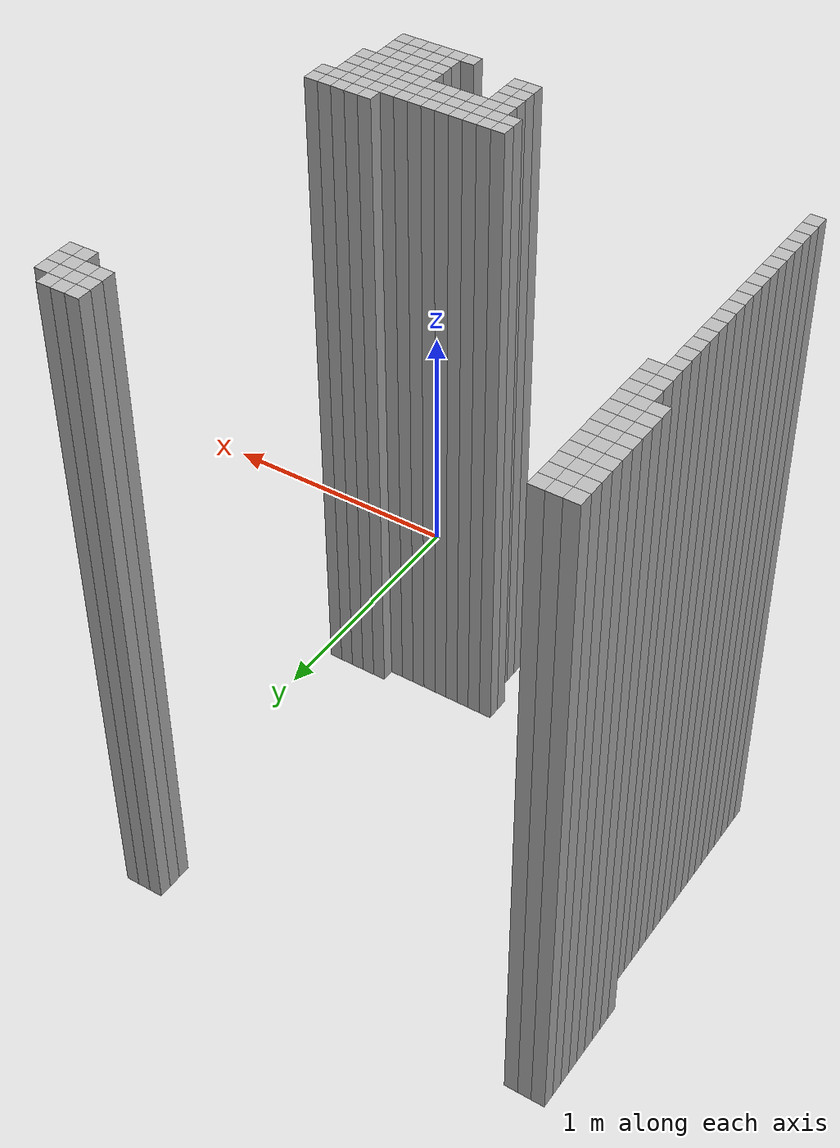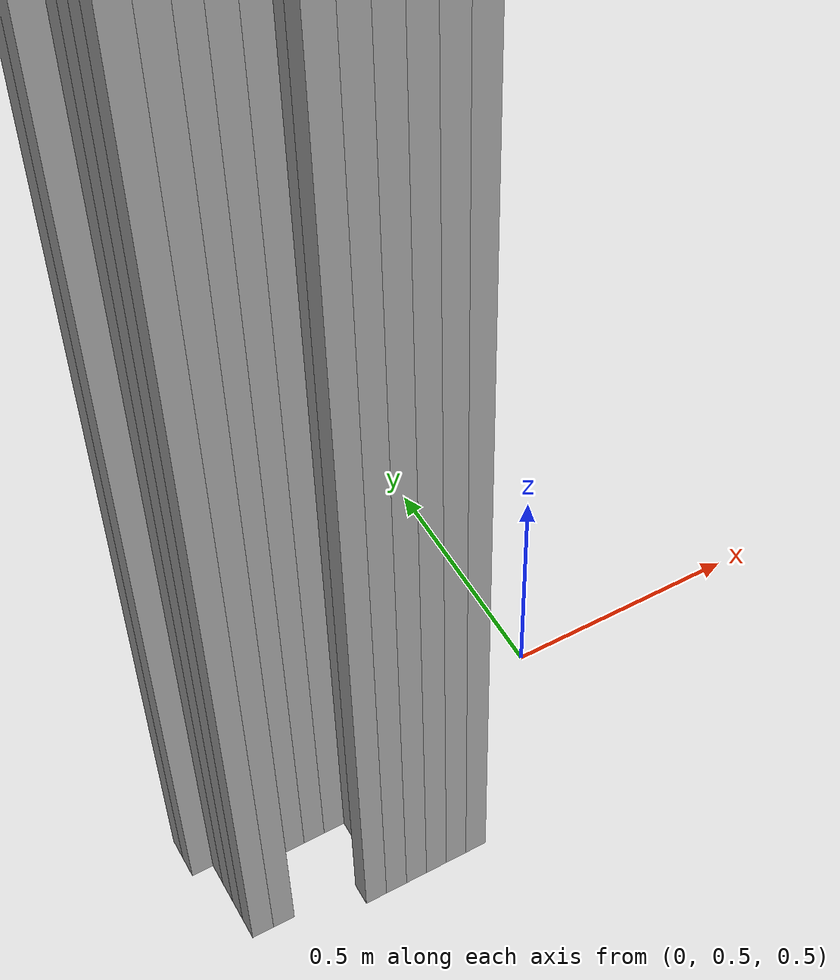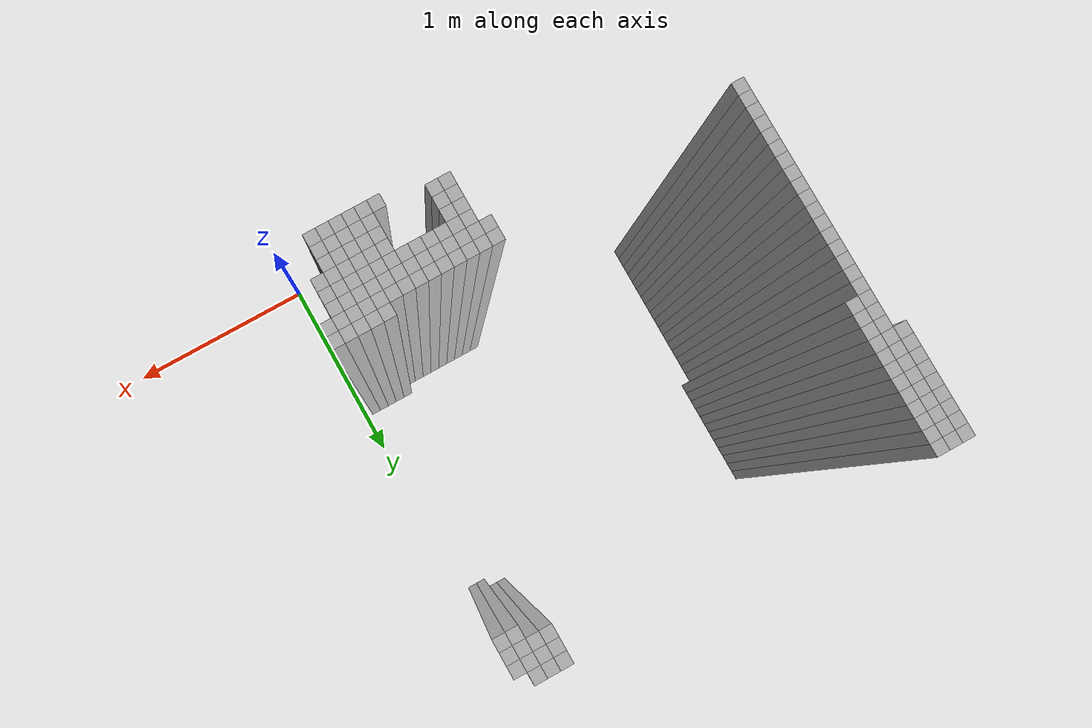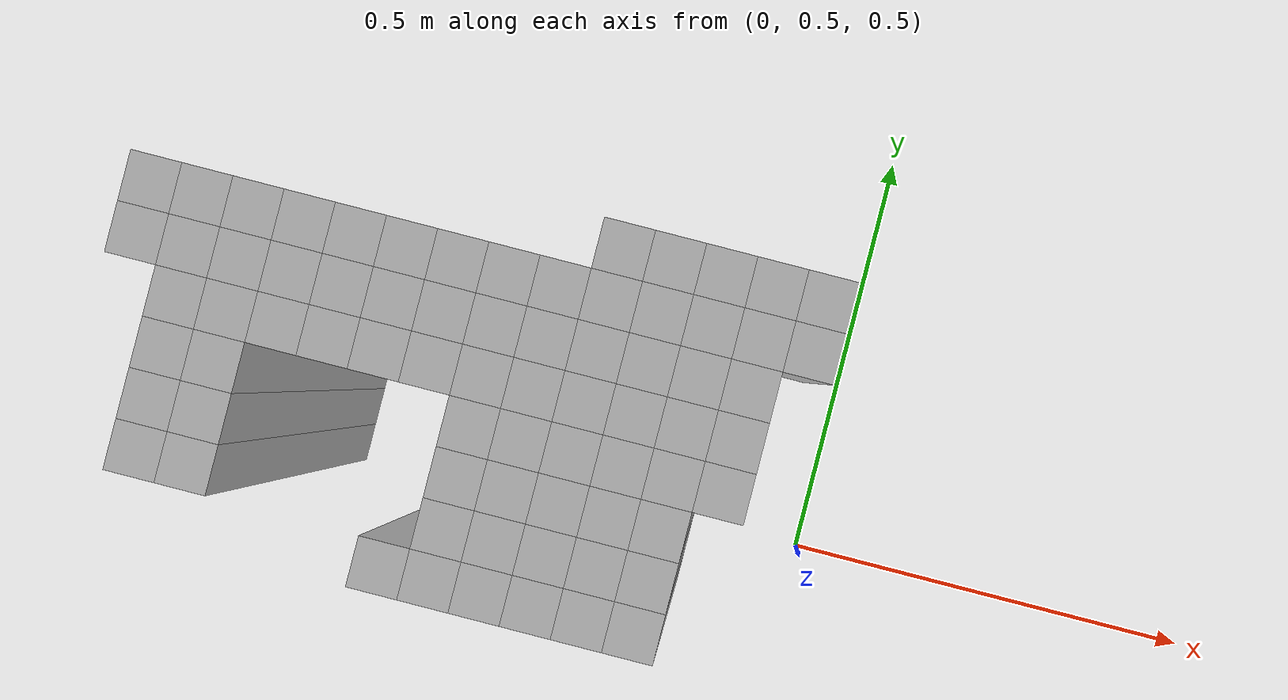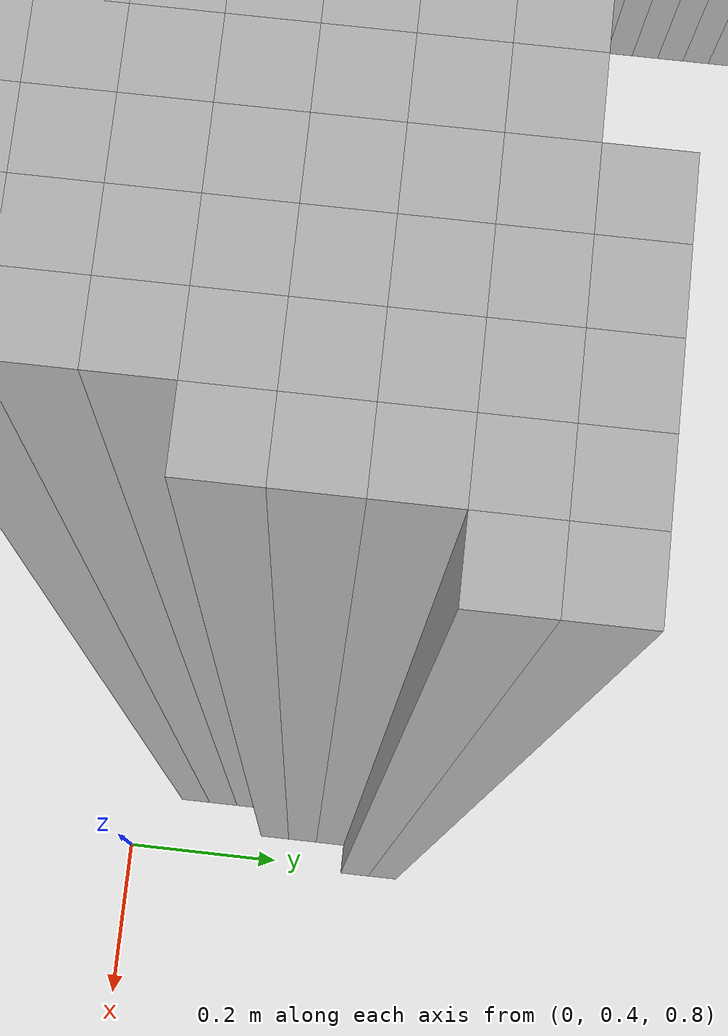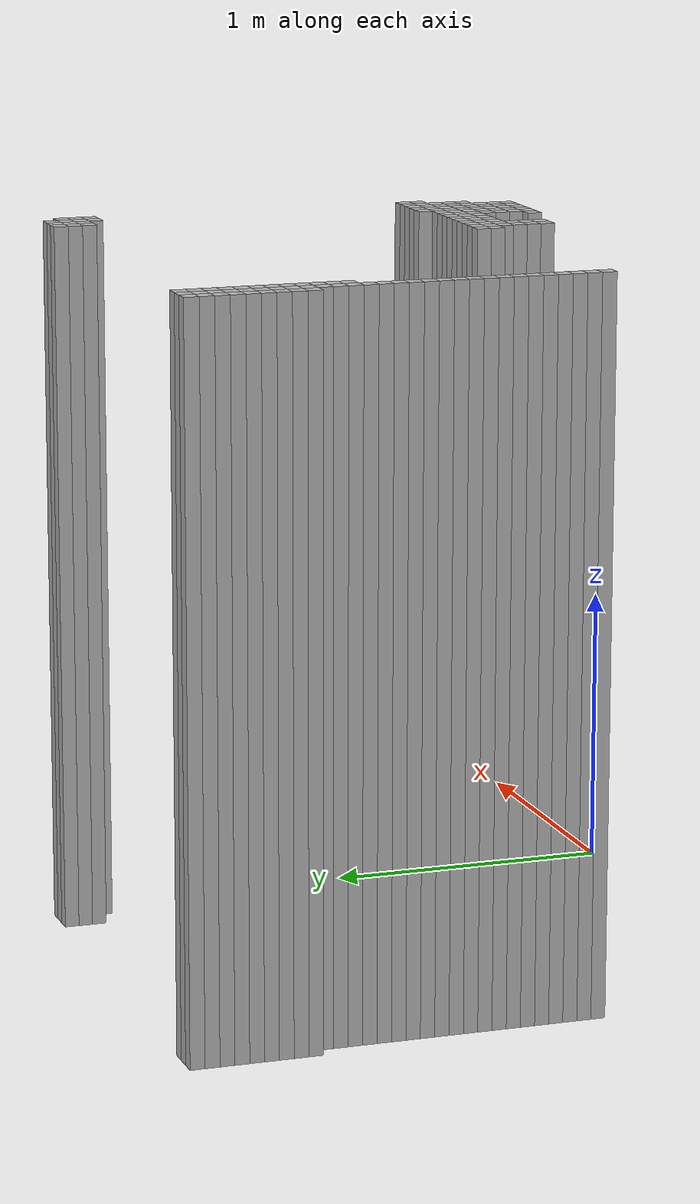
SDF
<sdf version="1.9">
 <world name="map_world">
  <model name="wall_188_112">
   <static>true</static>
   <pose>-1.761 2.080 1.250 0 0 0</pose>
   <link name="link">
    <collision name="collision"><geometry><box><size>0.050 0.050 2.500</size></box></geometry></collision>
    <visual name="visual"><geometry><box><size>0.050 0.050 2.500</size></box></geometry></visual>
   </link>
  </model>
  <model name="wall_189_112">
   <static>true</static>
   <pose>-1.711 2.080 1.250 0 0 0</pose>
   <link name="link">
    <collision name="collision"><geometry><box><size>0.050 0.050 2.500</size></box></geometry></collision>
    <visual name="visual"><geometry><box><size>0.050 0.050 2.500</size></box></geometry></visual>
   </link>
  </model>
  <model name="wall_190_112">
   <static>true</static>
   <pose>-1.661 2.080 1.250 0 0 0</pose>
   <link name="link">
    <collision name="collision"><geometry><box><size>0.050 0.050 2.500</size></box></geometry></collision>
    <visual name="visual"><geometry><box><size>0.050 0.050 2.500</size></box></geometry></visual>
   </link>
  </model>
  <model name="wall_219_112">
   <static>true</static>
   <pose>-0.211 2.080 1.250 0 0 0</pose>
   <link name="link">
    <collision name="collision"><geometry><box><size>0.050 0.050 2.500</size></box></geometry></collision>
    <visual name="visual"><geometry><box><size>0.050 0.050 2.500</size></box></geometry></visual>
   </link>
  </model>
  <model name="wall_220_112">
   <static>true</static>
   <pose>-0.161 2.080 1.250 0 0 0</pose>
   <link name="link">
    <collision name="collision"><geometry><box><size>0.050 0.050 2.500</size></box></geometry></collision>
    <visual name="visual"><geometry><box><size>0.050 0.050 2.500</size></box></geometry></visual>
   </link>
  </model>
  <model name="wall_221_112">
   <static>true</static>
   <pose>-0.111 2.080 1.250 0 0 0</pose>
   <link name="link">
    <collision name="collision"><geometry><box><size>0.050 0.050 2.500</size></box></geometry></collision>
    <visual name="visual"><geometry><box><size>0.050 0.050 2.500</size></box></geometry></visual>
   </link>
  </model>
  <model name="wall_188_113">
   <static>true</static>
   <pose>-1.761 2.030 1.250 0 0 0</pose>
   <link name="link">
    <collision name="collision"><geometry><box><size>0.050 0.050 2.500</size></box></geometry></collision>
    <visual name="visual"><geometry><box><size>0.050 0.050 2.500</size></box></geometry></visual>
   </link>
  </model>
  <model name="wall_189_113">
   <static>true</static>
   <pose>-1.711 2.030 1.250 0 0 0</pose>
   <link name="link">
    <collision name="collision"><geometry><box><size>0.050 0.050 2.500</size></box></geometry></collision>
    <visual name="visual"><geometry><box><size>0.050 0.050 2.500</size></box></geometry></visual>
   </link>
  </model>
  <model name="wall_190_113">
   <static>true</static>
   <pose>-1.661 2.030 1.250 0 0 0</pose>
   <link name="link">
    <collision name="collision"><geometry><box><size>0.050 0.050 2.500</size></box></geometry></collision>
    <visual name="visual"><geometry><box><size>0.050 0.050 2.500</size></box></geometry></visual>
   </link>
  </model>
  <model name="wall_219_113">
   <static>true</static>
   <pose>-0.211 2.030 1.250 0 0 0</pose>
   <link name="link">
    <collision name="collision"><geometry><box><size>0.050 0.050 2.500</size></box></geometry></collision>
    <visual name="visual"><geometry><box><size>0.050 0.050 2.500</size></box></geometry></visual>
   </link>
  </model>
  <model name="wall_220_113">
   <static>true</static>
   <pose>-0.161 2.030 1.250 0 0 0</pose>
   <link name="link">
    <collision name="collision"><geometry><box><size>0.050 0.050 2.500</size></box></geometry></collision>
    <visual name="visual"><geometry><box><size>0.050 0.050 2.500</size></box></geometry></visual>
   </link>
  </model>
  <model name="wall_221_113">
   <static>true</static>
   <pose>-0.111 2.030 1.250 0 0 0</pose>
   <link name="link">
    <collision name="collision"><geometry><box><size>0.050 0.050 2.500</size></box></geometry></collision>
    <visual name="visual"><geometry><box><size>0.050 0.050 2.500</size></box></geometry></visual>
   </link>
  </model>
  <model name="wall_222_113">
   <static>true</static>
   <pose>-0.061 2.030 1.250 0 0 0</pose>
   <link name="link">
    <collision name="collision"><geometry><box><size>0.050 0.050 2.500</size></box></geometry></collision>
    <visual name="visual"><geometry><box><size>0.050 0.050 2.500</size></box></geometry></visual>
   </link>
  </model>
  <model name="wall_188_114">
   <static>true</static>
   <pose>-1.761 1.980 1.250 0 0 0</pose>
   <link name="link">
    <collision name="collision"><geometry><box><size>0.050 0.050 2.500</size></box></geometry></collision>
    <visual name="visual"><geometry><box><size>0.050 0.050 2.500</size></box></geometry></visual>
   </link>
  </model>
  <model name="wall_189_114">
   <static>true</static>
   <pose>-1.711 1.980 1.250 0 0 0</pose>
   <link name="link">
    <collision name="collision"><geometry><box><size>0.050 0.050 2.500</size></box></geometry></collision>
    <visual name="visual"><geometry><box><size>0.050 0.050 2.500</size></box></geometry></visual>
   </link>
  </model>
  <model name="wall_190_114">
   <static>true</static>
   <pose>-1.661 1.980 1.250 0 0 0</pose>
   <link name="link">
    <collision name="collision"><geometry><box><size>0.050 0.050 2.500</size></box></geometry></collision>
    <visual name="visual"><geometry><box><size>0.050 0.050 2.500</size></box></geometry></visual>
   </link>
  </model>
  <model name="wall_219_114">
   <static>true</static>
   <pose>-0.211 1.980 1.250 0 0 0</pose>
   <link name="link">
    <collision name="collision"><geometry><box><size>0.050 0.050 2.500</size></box></geometry></collision>
    <visual name="visual"><geometry><box><size>0.050 0.050 2.500</size></box></geometry></visual>
   </link>
  </model>
  <model name="wall_220_114">
   <static>true</static>
   <pose>-0.161 1.980 1.250 0 0 0</pose>
   <link name="link">
    <collision name="collision"><geometry><box><size>0.050 0.050 2.500</size></box></geometry></collision>
    <visual name="visual"><geometry><box><size>0.050 0.050 2.500</size></box></geometry></visual>
   </link>
  </model>
  <model name="wall_221_114">
   <static>true</static>
   <pose>-0.111 1.980 1.250 0 0 0</pose>
   <link name="link">
    <collision name="collision"><geometry><box><size>0.050 0.050 2.500</size></box></geometry></collision>
    <visual name="visual"><geometry><box><size>0.050 0.050 2.500</size></box></geometry></visual>
   </link>
  </model>
  <model name="wall_222_114">
   <static>true</static>
   <pose>-0.061 1.980 1.250 0 0 0</pose>
   <link name="link">
    <collision name="collision"><geometry><box><size>0.050 0.050 2.500</size></box></geometry></collision>
    <visual name="visual"><geometry><box><size>0.050 0.050 2.500</size></box></geometry></visual>
   </link>
  </model>
  <model name="wall_188_115">
   <static>true</static>
   <pose>-1.761 1.930 1.250 0 0 0</pose>
   <link name="link">
    <collision name="collision"><geometry><box><size>0.050 0.050 2.500</size></box></geometry></collision>
    <visual name="visual"><geometry><box><size>0.050 0.050 2.500</size></box></geometry></visual>
   </link>
  </model>
  <model name="wall_189_115">
   <static>true</static>
   <pose>-1.711 1.930 1.250 0 0 0</pose>
   <link name="link">
    <collision name="collision"><geometry><box><size>0.050 0.050 2.500</size></box></geometry></collision>
    <visual name="visual"><geometry><box><size>0.050 0.050 2.500</size></box></geometry></visual>
   </link>
  </model>
  <model name="wall_190_115">
   <static>true</static>
   <pose>-1.661 1.930 1.250 0 0 0</pose>
   <link name="link">
    <collision name="collision"><geometry><box><size>0.050 0.050 2.500</size></box></geometry></collision>
    <visual name="visual"><geometry><box><size>0.050 0.050 2.500</size></box></geometry></visual>
   </link>
  </model>
  <model name="wall_221_115">
   <static>true</static>
   <pose>-0.111 1.930 1.250 0 0 0</pose>
   <link name="link">
    <collision name="collision"><geometry><box><size>0.050 0.050 2.500</size></box></geometry></collision>
    <visual name="visual"><geometry><box><size>0.050 0.050 2.500</size></box></geometry></visual>
   </link>
  </model>
  <model name="wall_222_115">
   <static>true</static>
   <pose>-0.061 1.930 1.250 0 0 0</pose>
   <link name="link">
    <collision name="collision"><geometry><box><size>0.050 0.050 2.500</size></box></geometry></collision>
    <visual name="visual"><geometry><box><size>0.050 0.050 2.500</size></box></geometry></visual>
   </link>
  </model>
  <model name="wall_188_116">
   <static>true</static>
   <pose>-1.761 1.880 1.250 0 0 0</pose>
   <link name="link">
    <collision name="collision"><geometry><box><size>0.050 0.050 2.500</size></box></geometry></collision>
    <visual name="visual"><geometry><box><size>0.050 0.050 2.500</size></box></geometry></visual>
   </link>
  </model>
  <model name="wall_189_116">
   <static>true</static>
   <pose>-1.711 1.880 1.250 0 0 0</pose>
   <link name="link">
    <collision name="collision"><geometry><box><size>0.050 0.050 2.500</size></box></geometry></collision>
    <visual name="visual"><geometry><box><size>0.050 0.050 2.500</size></box></geometry></visual>
   </link>
  </model>
  <model name="wall_190_116">
   <static>true</static>
   <pose>-1.661 1.880 1.250 0 0 0</pose>
   <link name="link">
    <collision name="collision"><geometry><box><size>0.050 0.050 2.500</size></box></geometry></collision>
    <visual name="visual"><geometry><box><size>0.050 0.050 2.500</size></box></geometry></visual>
   </link>
  </model>
  <model name="wall_188_117">
   <static>true</static>
   <pose>-1.761 1.830 1.250 0 0 0</pose>
   <link name="link">
    <collision name="collision"><geometry><box><size>0.050 0.050 2.500</size></box></geometry></collision>
    <visual name="visual"><geometry><box><size>0.050 0.050 2.500</size></box></geometry></visual>
   </link>
  </model>
  <model name="wall_189_117">
   <static>true</static>
   <pose>-1.711 1.830 1.250 0 0 0</pose>
   <link name="link">
    <collision name="collision"><geometry><box><size>0.050 0.050 2.500</size></box></geometry></collision>
    <visual name="visual"><geometry><box><size>0.050 0.050 2.500</size></box></geometry></visual>
   </link>
  </model>
  <model name="wall_190_117">
   <static>true</static>
   <pose>-1.661 1.830 1.250 0 0 0</pose>
   <link name="link">
    <collision name="collision"><geometry><box><size>0.050 0.050 2.500</size></box></geometry></collision>
    <visual name="visual"><geometry><box><size>0.050 0.050 2.500</size></box></geometry></visual>
   </link>
  </model>
  <model name="wall_188_118">
   <static>true</static>
   <pose>-1.761 1.780 1.250 0 0 0</pose>
   <link name="link">
    <collision name="collision"><geometry><box><size>0.050 0.050 2.500</size></box></geometry></collision>
    <visual name="visual"><geometry><box><size>0.050 0.050 2.500</size></box></geometry></visual>
   </link>
  </model>
  <model name="wall_189_118">
   <static>true</static>
   <pose>-1.711 1.780 1.250 0 0 0</pose>
   <link name="link">
    <collision name="collision"><geometry><box><size>0.050 0.050 2.500</size></box></geometry></collision>
    <visual name="visual"><geometry><box><size>0.050 0.050 2.500</size></box></geometry></visual>
   </link>
  </model>
  <model name="wall_190_118">
   <static>true</static>
   <pose>-1.661 1.780 1.250 0 0 0</pose>
   <link name="link">
    <collision name="collision"><geometry><box><size>0.050 0.050 2.500</size></box></geometry></collision>
    <visual name="visual"><geometry><box><size>0.050 0.050 2.500</size></box></geometry></visual>
   </link>
  </model>
  <model name="wall_188_119">
   <static>true</static>
   <pose>-1.761 1.730 1.250 0 0 0</pose>
   <link name="link">
    <collision name="collision"><geometry><box><size>0.050 0.050 2.500</size></box></geometry></collision>
    <visual name="visual"><geometry><box><size>0.050 0.050 2.500</size></box></geometry></visual>
   </link>
  </model>
  <model name="wall_189_119">
   <static>true</static>
   <pose>-1.711 1.730 1.250 0 0 0</pose>
   <link name="link">
    <collision name="collision"><geometry><box><size>0.050 0.050 2.500</size></box></geometry></collision>
    <visual name="visual"><geometry><box><size>0.050 0.050 2.500</size></box></geometry></visual>
   </link>
  </model>
  <model name="wall_190_119">
   <static>true</static>
   <pose>-1.661 1.730 1.250 0 0 0</pose>
   <link name="link">
    <collision name="collision"><geometry><box><size>0.050 0.050 2.500</size></box></geometry></collision>
    <visual name="visual"><geometry><box><size>0.050 0.050 2.500</size></box></geometry></visual>
   </link>
  </model>
  <model name="wall_188_120">
   <static>true</static>
   <pose>-1.761 1.680 1.250 0 0 0</pose>
   <link name="link">
    <collision name="collision"><geometry><box><size>0.050 0.050 2.500</size></box></geometry></collision>
    <visual name="visual"><geometry><box><size>0.050 0.050 2.500</size></box></geometry></visual>
   </link>
  </model>
  <model name="wall_189_120">
   <static>true</static>
   <pose>-1.711 1.680 1.250 0 0 0</pose>
   <link name="link">
    <collision name="collision"><geometry><box><size>0.050 0.050 2.500</size></box></geometry></collision>
    <visual name="visual"><geometry><box><size>0.050 0.050 2.500</size></box></geometry></visual>
   </link>
  </model>
  <model name="wall_190_120">
   <static>true</static>
   <pose>-1.661 1.680 1.250 0 0 0</pose>
   <link name="link">
    <collision name="collision"><geometry><box><size>0.050 0.050 2.500</size></box></geometry></collision>
    <visual name="visual"><geometry><box><size>0.050 0.050 2.500</size></box></geometry></visual>
   </link>
  </model>
  <model name="wall_189_121">
   <static>true</static>
   <pose>-1.711 1.630 1.250 0 0 0</pose>
   <link name="link">
    <collision name="collision"><geometry><box><size>0.050 0.050 2.500</size></box></geometry></collision>
    <visual name="visual"><geometry><box><size>0.050 0.050 2.500</size></box></geometry></visual>
   </link>
  </model>
  <model name="wall_190_121">
   <static>true</static>
   <pose>-1.661 1.630 1.250 0 0 0</pose>
   <link name="link">
    <collision name="collision"><geometry><box><size>0.050 0.050 2.500</size></box></geometry></collision>
    <visual name="visual"><geometry><box><size>0.050 0.050 2.500</size></box></geometry></visual>
   </link>
  </model>
  <model name="wall_189_122">
   <static>true</static>
   <pose>-1.711 1.580 1.250 0 0 0</pose>
   <link name="link">
    <collision name="collision"><geometry><box><size>0.050 0.050 2.500</size></box></geometry></collision>
    <visual name="visual"><geometry><box><size>0.050 0.050 2.500</size></box></geometry></visual>
   </link>
  </model>
  <model name="wall_190_122">
   <static>true</static>
   <pose>-1.661 1.580 1.250 0 0 0</pose>
   <link name="link">
    <collision name="collision"><geometry><box><size>0.050 0.050 2.500</size></box></geometry></collision>
    <visual name="visual"><geometry><box><size>0.050 0.050 2.500</size></box></geometry></visual>
   </link>
  </model>
  <model name="wall_189_123">
   <static>true</static>
   <pose>-1.711 1.530 1.250 0 0 0</pose>
   <link name="link">
    <collision name="collision"><geometry><box><size>0.050 0.050 2.500</size></box></geometry></collision>
    <visual name="visual"><geometry><box><size>0.050 0.050 2.500</size></box></geometry></visual>
   </link>
  </model>
  <model name="wall_190_123">
   <static>true</static>
   <pose>-1.661 1.530 1.250 0 0 0</pose>
   <link name="link">
    <collision name="collision"><geometry><box><size>0.050 0.050 2.500</size></box></geometry></collision>
    <visual name="visual"><geometry><box><size>0.050 0.050 2.500</size></box></geometry></visual>
   </link>
  </model>
  <model name="wall_189_124">
   <static>true</static>
   <pose>-1.711 1.480 1.250 0 0 0</pose>
   <link name="link">
    <collision name="collision"><geometry><box><size>0.050 0.050 2.500</size></box></geometry></collision>
    <visual name="visual"><geometry><box><size>0.050 0.050 2.500</size></box></geometry></visual>
   </link>
  </model>
  <model name="wall_189_125">
   <static>true</static>
   <pose>-1.711 1.430 1.250 0 0 0</pose>
   <link name="link">
    <collision name="collision"><geometry><box><size>0.050 0.050 2.500</size></box></geometry></collision>
    <visual name="visual"><geometry><box><size>0.050 0.050 2.500</size></box></geometry></visual>
   </link>
  </model>
  <model name="wall_189_126">
   <static>true</static>
   <pose>-1.711 1.380 1.250 0 0 0</pose>
   <link name="link">
    <collision name="collision"><geometry><box><size>0.050 0.050 2.500</size></box></geometry></collision>
    <visual name="visual"><geometry><box><size>0.050 0.050 2.500</size></box></geometry></visual>
   </link>
  </model>
  <model name="wall_189_127">
   <static>true</static>
   <pose>-1.711 1.330 1.250 0 0 0</pose>
   <link name="link">
    <collision name="collision"><geometry><box><size>0.050 0.050 2.500</size></box></geometry></collision>
    <visual name="visual"><geometry><box><size>0.050 0.050 2.500</size></box></geometry></visual>
   </link>
  </model>
  <model name="wall_189_128">
   <static>true</static>
   <pose>-1.711 1.280 1.250 0 0 0</pose>
   <link name="link">
    <collision name="collision"><geometry><box><size>0.050 0.050 2.500</size></box></geometry></collision>
    <visual name="visual"><geometry><box><size>0.050 0.050 2.500</size></box></geometry></visual>
   </link>
  </model>
  <model name="wall_189_129">
   <static>true</static>
   <pose>-1.711 1.230 1.250 0 0 0</pose>
   <link name="link">
    <collision name="collision"><geometry><box><size>0.050 0.050 2.500</size></box></geometry></collision>
    <visual name="visual"><geometry><box><size>0.050 0.050 2.500</size></box></geometry></visual>
   </link>
  </model>
  <model name="wall_189_130">
   <static>true</static>
   <pose>-1.711 1.180 1.250 0 0 0</pose>
   <link name="link">
    <collision name="collision"><geometry><box><size>0.050 0.050 2.500</size></box></geometry></collision>
    <visual name="visual"><geometry><box><size>0.050 0.050 2.500</size></box></geometry></visual>
   </link>
  </model>
  <model name="wall_189_131">
   <static>true</static>
   <pose>-1.711 1.130 1.250 0 0 0</pose>
   <link name="link">
    <collision name="collision"><geometry><box><size>0.050 0.050 2.500</size></box></geometry></collision>
    <visual name="visual"><geometry><box><size>0.050 0.050 2.500</size></box></geometry></visual>
   </link>
  </model>
  <model name="wall_189_132">
   <static>true</static>
   <pose>-1.711 1.080 1.250 0 0 0</pose>
   <link name="link">
    <collision name="collision"><geometry><box><size>0.050 0.050 2.500</size></box></geometry></collision>
    <visual name="visual"><geometry><box><size>0.050 0.050 2.500</size></box></geometry></visual>
   </link>
  </model>
  <model name="wall_189_133">
   <static>true</static>
   <pose>-1.711 1.030 1.250 0 0 0</pose>
   <link name="link">
    <collision name="collision"><geometry><box><size>0.050 0.050 2.500</size></box></geometry></collision>
    <visual name="visual"><geometry><box><size>0.050 0.050 2.500</size></box></geometry></visual>
   </link>
  </model>
  <model name="wall_189_134">
   <static>true</static>
   <pose>-1.711 0.980 1.250 0 0 0</pose>
   <link name="link">
    <collision name="collision"><geometry><box><size>0.050 0.050 2.500</size></box></geometry></collision>
    <visual name="visual"><geometry><box><size>0.050 0.050 2.500</size></box></geometry></visual>
   </link>
  </model>
  <model name="wall_189_135">
   <static>true</static>
   <pose>-1.711 0.930 1.250 0 0 0</pose>
   <link name="link">
    <collision name="collision"><geometry><box><size>0.050 0.050 2.500</size></box></geometry></collision>
    <visual name="visual"><geometry><box><size>0.050 0.050 2.500</size></box></geometry></visual>
   </link>
  </model>
  <model name="wall_189_136">
   <static>true</static>
   <pose>-1.711 0.880 1.250 0 0 0</pose>
   <link name="link">
    <collision name="collision"><geometry><box><size>0.050 0.050 2.500</size></box></geometry></collision>
    <visual name="visual"><geometry><box><size>0.050 0.050 2.500</size></box></geometry></visual>
   </link>
  </model>
  <model name="wall_189_137">
   <static>true</static>
   <pose>-1.711 0.830 1.250 0 0 0</pose>
   <link name="link">
    <collision name="collision"><geometry><box><size>0.050 0.050 2.500</size></box></geometry></collision>
    <visual name="visual"><geometry><box><size>0.050 0.050 2.500</size></box></geometry></visual>
   </link>
  </model>
  <model name="wall_189_138">
   <static>true</static>
   <pose>-1.711 0.780 1.250 0 0 0</pose>
   <link name="link">
    <collision name="collision"><geometry><box><size>0.050 0.050 2.500</size></box></geometry></collision>
    <visual name="visual"><geometry><box><size>0.050 0.050 2.500</size></box></geometry></visual>
   </link>
  </model>
  <model name="wall_218_138">
   <static>true</static>
   <pose>-0.261 0.780 1.250 0 0 0</pose>
   <link name="link">
    <collision name="collision"><geometry><box><size>0.050 0.050 2.500</size></box></geometry></collision>
    <visual name="visual"><geometry><box><size>0.050 0.050 2.500</size></box></geometry></visual>
   </link>
  </model>
  <model name="wall_219_138">
   <static>true</static>
   <pose>-0.211 0.780 1.250 0 0 0</pose>
   <link name="link">
    <collision name="collision"><geometry><box><size>0.050 0.050 2.500</size></box></geometry></collision>
    <visual name="visual"><geometry><box><size>0.050 0.050 2.500</size></box></geometry></visual>
   </link>
  </model>
  <model name="wall_220_138">
   <static>true</static>
   <pose>-0.161 0.780 1.250 0 0 0</pose>
   <link name="link">
    <collision name="collision"><geometry><box><size>0.050 0.050 2.500</size></box></geometry></collision>
    <visual name="visual"><geometry><box><size>0.050 0.050 2.500</size></box></geometry></visual>
   </link>
  </model>
  <model name="wall_221_138">
   <static>true</static>
   <pose>-0.111 0.780 1.250 0 0 0</pose>
   <link name="link">
    <collision name="collision"><geometry><box><size>0.050 0.050 2.500</size></box></geometry></collision>
    <visual name="visual"><geometry><box><size>0.050 0.050 2.500</size></box></geometry></visual>
   </link>
  </model>
  <model name="wall_222_138">
   <static>true</static>
   <pose>-0.061 0.780 1.250 0 0 0</pose>
   <link name="link">
    <collision name="collision"><geometry><box><size>0.050 0.050 2.500</size></box></geometry></collision>
    <visual name="visual"><geometry><box><size>0.050 0.050 2.500</size></box></geometry></visual>
   </link>
  </model>
  <model name="wall_189_139">
   <static>true</static>
   <pose>-1.711 0.730 1.250 0 0 0</pose>
   <link name="link">
    <collision name="collision"><geometry><box><size>0.050 0.050 2.500</size></box></geometry></collision>
    <visual name="visual"><geometry><box><size>0.050 0.050 2.500</size></box></geometry></visual>
   </link>
  </model>
  <model name="wall_209_139">
   <static>true</static>
   <pose>-0.711 0.730 1.250 0 0 0</pose>
   <link name="link">
    <collision name="collision"><geometry><box><size>0.050 0.050 2.500</size></box></geometry></collision>
    <visual name="visual"><geometry><box><size>0.050 0.050 2.500</size></box></geometry></visual>
   </link>
  </model>
  <model name="wall_210_139">
   <static>true</static>
   <pose>-0.661 0.730 1.250 0 0 0</pose>
   <link name="link">
    <collision name="collision"><geometry><box><size>0.050 0.050 2.500</size></box></geometry></collision>
    <visual name="visual"><geometry><box><size>0.050 0.050 2.500</size></box></geometry></visual>
   </link>
  </model>
  <model name="wall_211_139">
   <static>true</static>
   <pose>-0.611 0.730 1.250 0 0 0</pose>
   <link name="link">
    <collision name="collision"><geometry><box><size>0.050 0.050 2.500</size></box></geometry></collision>
    <visual name="visual"><geometry><box><size>0.050 0.050 2.500</size></box></geometry></visual>
   </link>
  </model>
  <model name="wall_212_139">
   <static>true</static>
   <pose>-0.561 0.730 1.250 0 0 0</pose>
   <link name="link">
    <collision name="collision"><geometry><box><size>0.050 0.050 2.500</size></box></geometry></collision>
    <visual name="visual"><geometry><box><size>0.050 0.050 2.500</size></box></geometry></visual>
   </link>
  </model>
  <model name="wall_213_139">
   <static>true</static>
   <pose>-0.511 0.730 1.250 0 0 0</pose>
   <link name="link">
    <collision name="collision"><geometry><box><size>0.050 0.050 2.500</size></box></geometry></collision>
    <visual name="visual"><geometry><box><size>0.050 0.050 2.500</size></box></geometry></visual>
   </link>
  </model>
  <model name="wall_214_139">
   <static>true</static>
   <pose>-0.461 0.730 1.250 0 0 0</pose>
   <link name="link">
    <collision name="collision"><geometry><box><size>0.050 0.050 2.500</size></box></geometry></collision>
    <visual name="visual"><geometry><box><size>0.050 0.050 2.500</size></box></geometry></visual>
   </link>
  </model>
  <model name="wall_215_139">
   <static>true</static>
   <pose>-0.411 0.730 1.250 0 0 0</pose>
   <link name="link">
    <collision name="collision"><geometry><box><size>0.050 0.050 2.500</size></box></geometry></collision>
    <visual name="visual"><geometry><box><size>0.050 0.050 2.500</size></box></geometry></visual>
   </link>
  </model>
  <model name="wall_216_139">
   <static>true</static>
   <pose>-0.361 0.730 1.250 0 0 0</pose>
   <link name="link">
    <collision name="collision"><geometry><box><size>0.050 0.050 2.500</size></box></geometry></collision>
    <visual name="visual"><geometry><box><size>0.050 0.050 2.500</size></box></geometry></visual>
   </link>
  </model>
  <model name="wall_217_139">
   <static>true</static>
   <pose>-0.311 0.730 1.250 0 0 0</pose>
   <link name="link">
    <collision name="collision"><geometry><box><size>0.050 0.050 2.500</size></box></geometry></collision>
    <visual name="visual"><geometry><box><size>0.050 0.050 2.500</size></box></geometry></visual>
   </link>
  </model>
  <model name="wall_218_139">
   <static>true</static>
   <pose>-0.261 0.730 1.250 0 0 0</pose>
   <link name="link">
    <collision name="collision"><geometry><box><size>0.050 0.050 2.500</size></box></geometry></collision>
    <visual name="visual"><geometry><box><size>0.050 0.050 2.500</size></box></geometry></visual>
   </link>
  </model>
  <model name="wall_219_139">
   <static>true</static>
   <pose>-0.211 0.730 1.250 0 0 0</pose>
   <link name="link">
    <collision name="collision"><geometry><box><size>0.050 0.050 2.500</size></box></geometry></collision>
    <visual name="visual"><geometry><box><size>0.050 0.050 2.500</size></box></geometry></visual>
   </link>
  </model>
  <model name="wall_220_139">
   <static>true</static>
   <pose>-0.161 0.730 1.250 0 0 0</pose>
   <link name="link">
    <collision name="collision"><geometry><box><size>0.050 0.050 2.500</size></box></geometry></collision>
    <visual name="visual"><geometry><box><size>0.050 0.050 2.500</size></box></geometry></visual>
   </link>
  </model>
  <model name="wall_221_139">
   <static>true</static>
   <pose>-0.111 0.730 1.250 0 0 0</pose>
   <link name="link">
    <collision name="collision"><geometry><box><size>0.050 0.050 2.500</size></box></geometry></collision>
    <visual name="visual"><geometry><box><size>0.050 0.050 2.500</size></box></geometry></visual>
   </link>
  </model>
  <model name="wall_222_139">
   <static>true</static>
   <pose>-0.061 0.730 1.250 0 0 0</pose>
   <link name="link">
    <collision name="collision"><geometry><box><size>0.050 0.050 2.500</size></box></geometry></collision>
    <visual name="visual"><geometry><box><size>0.050 0.050 2.500</size></box></geometry></visual>
   </link>
  </model>
  <model name="wall_189_140">
   <static>true</static>
   <pose>-1.711 0.680 1.250 0 0 0</pose>
   <link name="link">
    <collision name="collision"><geometry><box><size>0.050 0.050 2.500</size></box></geometry></collision>
    <visual name="visual"><geometry><box><size>0.050 0.050 2.500</size></box></geometry></visual>
   </link>
  </model>
  <model name="wall_209_140">
   <static>true</static>
   <pose>-0.711 0.680 1.250 0 0 0</pose>
   <link name="link">
    <collision name="collision"><geometry><box><size>0.050 0.050 2.500</size></box></geometry></collision>
    <visual name="visual"><geometry><box><size>0.050 0.050 2.500</size></box></geometry></visual>
   </link>
  </model>
  <model name="wall_210_140">
   <static>true</static>
   <pose>-0.661 0.680 1.250 0 0 0</pose>
   <link name="link">
    <collision name="collision"><geometry><box><size>0.050 0.050 2.500</size></box></geometry></collision>
    <visual name="visual"><geometry><box><size>0.050 0.050 2.500</size></box></geometry></visual>
   </link>
  </model>
  <model name="wall_211_140">
   <static>true</static>
   <pose>-0.611 0.680 1.250 0 0 0</pose>
   <link name="link">
    <collision name="collision"><geometry><box><size>0.050 0.050 2.500</size></box></geometry></collision>
    <visual name="visual"><geometry><box><size>0.050 0.050 2.500</size></box></geometry></visual>
   </link>
  </model>
  <model name="wall_212_140">
   <static>true</static>
   <pose>-0.561 0.680 1.250 0 0 0</pose>
   <link name="link">
    <collision name="collision"><geometry><box><size>0.050 0.050 2.500</size></box></geometry></collision>
    <visual name="visual"><geometry><box><size>0.050 0.050 2.500</size></box></geometry></visual>
   </link>
  </model>
  <model name="wall_213_140">
   <static>true</static>
   <pose>-0.511 0.680 1.250 0 0 0</pose>
   <link name="link">
    <collision name="collision"><geometry><box><size>0.050 0.050 2.500</size></box></geometry></collision>
    <visual name="visual"><geometry><box><size>0.050 0.050 2.500</size></box></geometry></visual>
   </link>
  </model>
  <model name="wall_214_140">
   <static>true</static>
   <pose>-0.461 0.680 1.250 0 0 0</pose>
   <link name="link">
    <collision name="collision"><geometry><box><size>0.050 0.050 2.500</size></box></geometry></collision>
    <visual name="visual"><geometry><box><size>0.050 0.050 2.500</size></box></geometry></visual>
   </link>
  </model>
  <model name="wall_215_140">
   <static>true</static>
   <pose>-0.411 0.680 1.250 0 0 0</pose>
   <link name="link">
    <collision name="collision"><geometry><box><size>0.050 0.050 2.500</size></box></geometry></collision>
    <visual name="visual"><geometry><box><size>0.050 0.050 2.500</size></box></geometry></visual>
   </link>
  </model>
  <model name="wall_216_140">
   <static>true</static>
   <pose>-0.361 0.680 1.250 0 0 0</pose>
   <link name="link">
    <collision name="collision"><geometry><box><size>0.050 0.050 2.500</size></box></geometry></collision>
    <visual name="visual"><geometry><box><size>0.050 0.050 2.500</size></box></geometry></visual>
   </link>
  </model>
  <model name="wall_217_140">
   <static>true</static>
   <pose>-0.311 0.680 1.250 0 0 0</pose>
   <link name="link">
    <collision name="collision"><geometry><box><size>0.050 0.050 2.500</size></box></geometry></collision>
    <visual name="visual"><geometry><box><size>0.050 0.050 2.500</size></box></geometry></visual>
   </link>
  </model>
  <model name="wall_218_140">
   <static>true</static>
   <pose>-0.261 0.680 1.250 0 0 0</pose>
   <link name="link">
    <collision name="collision"><geometry><box><size>0.050 0.050 2.500</size></box></geometry></collision>
    <visual name="visual"><geometry><box><size>0.050 0.050 2.500</size></box></geometry></visual>
   </link>
  </model>
  <model name="wall_219_140">
   <static>true</static>
   <pose>-0.211 0.680 1.250 0 0 0</pose>
   <link name="link">
    <collision name="collision"><geometry><box><size>0.050 0.050 2.500</size></box></geometry></collision>
    <visual name="visual"><geometry><box><size>0.050 0.050 2.500</size></box></geometry></visual>
   </link>
  </model>
  <model name="wall_220_140">
   <static>true</static>
   <pose>-0.161 0.680 1.250 0 0 0</pose>
   <link name="link">
    <collision name="collision"><geometry><box><size>0.050 0.050 2.500</size></box></geometry></collision>
    <visual name="visual"><geometry><box><size>0.050 0.050 2.500</size></box></geometry></visual>
   </link>
  </model>
  <model name="wall_221_140">
   <static>true</static>
   <pose>-0.111 0.680 1.250 0 0 0</pose>
   <link name="link">
    <collision name="collision"><geometry><box><size>0.050 0.050 2.500</size></box></geometry></collision>
    <visual name="visual"><geometry><box><size>0.050 0.050 2.500</size></box></geometry></visual>
   </link>
  </model>
  <model name="wall_210_141">
   <static>true</static>
   <pose>-0.661 0.630 1.250 0 0 0</pose>
   <link name="link">
    <collision name="collision"><geometry><box><size>0.050 0.050 2.500</size></box></geometry></collision>
    <visual name="visual"><geometry><box><size>0.050 0.050 2.500</size></box></geometry></visual>
   </link>
  </model>
  <model name="wall_211_141">
   <static>true</static>
   <pose>-0.611 0.630 1.250 0 0 0</pose>
   <link name="link">
    <collision name="collision"><geometry><box><size>0.050 0.050 2.500</size></box></geometry></collision>
    <visual name="visual"><geometry><box><size>0.050 0.050 2.500</size></box></geometry></visual>
   </link>
  </model>
  <model name="wall_212_141">
   <static>true</static>
   <pose>-0.561 0.630 1.250 0 0 0</pose>
   <link name="link">
    <collision name="collision"><geometry><box><size>0.050 0.050 2.500</size></box></geometry></collision>
    <visual name="visual"><geometry><box><size>0.050 0.050 2.500</size></box></geometry></visual>
   </link>
  </model>
  <model name="wall_213_141">
   <static>true</static>
   <pose>-0.511 0.630 1.250 0 0 0</pose>
   <link name="link">
    <collision name="collision"><geometry><box><size>0.050 0.050 2.500</size></box></geometry></collision>
    <visual name="visual"><geometry><box><size>0.050 0.050 2.500</size></box></geometry></visual>
   </link>
  </model>
  <model name="wall_214_141">
   <static>true</static>
   <pose>-0.461 0.630 1.250 0 0 0</pose>
   <link name="link">
    <collision name="collision"><geometry><box><size>0.050 0.050 2.500</size></box></geometry></collision>
    <visual name="visual"><geometry><box><size>0.050 0.050 2.500</size></box></geometry></visual>
   </link>
  </model>
  <model name="wall_215_141">
   <static>true</static>
   <pose>-0.411 0.630 1.250 0 0 0</pose>
   <link name="link">
    <collision name="collision"><geometry><box><size>0.050 0.050 2.500</size></box></geometry></collision>
    <visual name="visual"><geometry><box><size>0.050 0.050 2.500</size></box></geometry></visual>
   </link>
  </model>
  <model name="wall_216_141">
   <static>true</static>
   <pose>-0.361 0.630 1.250 0 0 0</pose>
   <link name="link">
    <collision name="collision"><geometry><box><size>0.050 0.050 2.500</size></box></geometry></collision>
    <visual name="visual"><geometry><box><size>0.050 0.050 2.500</size></box></geometry></visual>
   </link>
  </model>
  <model name="wall_217_141">
   <static>true</static>
   <pose>-0.311 0.630 1.250 0 0 0</pose>
   <link name="link">
    <collision name="collision"><geometry><box><size>0.050 0.050 2.500</size></box></geometry></collision>
    <visual name="visual"><geometry><box><size>0.050 0.050 2.500</size></box></geometry></visual>
   </link>
  </model>
  <model name="wall_218_141">
   <static>true</static>
   <pose>-0.261 0.630 1.250 0 0 0</pose>
   <link name="link">
    <collision name="collision"><geometry><box><size>0.050 0.050 2.500</size></box></geometry></collision>
    <visual name="visual"><geometry><box><size>0.050 0.050 2.500</size></box></geometry></visual>
   </link>
  </model>
  <model name="wall_219_141">
   <static>true</static>
   <pose>-0.211 0.630 1.250 0 0 0</pose>
   <link name="link">
    <collision name="collision"><geometry><box><size>0.050 0.050 2.500</size></box></geometry></collision>
    <visual name="visual"><geometry><box><size>0.050 0.050 2.500</size></box></geometry></visual>
   </link>
  </model>
  <model name="wall_220_141">
   <static>true</static>
   <pose>-0.161 0.630 1.250 0 0 0</pose>
   <link name="link">
    <collision name="collision"><geometry><box><size>0.050 0.050 2.500</size></box></geometry></collision>
    <visual name="visual"><geometry><box><size>0.050 0.050 2.500</size></box></geometry></visual>
   </link>
  </model>
  <model name="wall_221_141">
   <static>true</static>
   <pose>-0.111 0.630 1.250 0 0 0</pose>
   <link name="link">
    <collision name="collision"><geometry><box><size>0.050 0.050 2.500</size></box></geometry></collision>
    <visual name="visual"><geometry><box><size>0.050 0.050 2.500</size></box></geometry></visual>
   </link>
  </model>
  <model name="wall_210_142">
   <static>true</static>
   <pose>-0.661 0.580 1.250 0 0 0</pose>
   <link name="link">
    <collision name="collision"><geometry><box><size>0.050 0.050 2.500</size></box></geometry></collision>
    <visual name="visual"><geometry><box><size>0.050 0.050 2.500</size></box></geometry></visual>
   </link>
  </model>
  <model name="wall_211_142">
   <static>true</static>
   <pose>-0.611 0.580 1.250 0 0 0</pose>
   <link name="link">
    <collision name="collision"><geometry><box><size>0.050 0.050 2.500</size></box></geometry></collision>
    <visual name="visual"><geometry><box><size>0.050 0.050 2.500</size></box></geometry></visual>
   </link>
  </model>
  <model name="wall_216_142">
   <static>true</static>
   <pose>-0.361 0.580 1.250 0 0 0</pose>
   <link name="link">
    <collision name="collision"><geometry><box><size>0.050 0.050 2.500</size></box></geometry></collision>
    <visual name="visual"><geometry><box><size>0.050 0.050 2.500</size></box></geometry></visual>
   </link>
  </model>
  <model name="wall_217_142">
   <static>true</static>
   <pose>-0.311 0.580 1.250 0 0 0</pose>
   <link name="link">
    <collision name="collision"><geometry><box><size>0.050 0.050 2.500</size></box></geometry></collision>
    <visual name="visual"><geometry><box><size>0.050 0.050 2.500</size></box></geometry></visual>
   </link>
  </model>
  <model name="wall_218_142">
   <static>true</static>
   <pose>-0.261 0.580 1.250 0 0 0</pose>
   <link name="link">
    <collision name="collision"><geometry><box><size>0.050 0.050 2.500</size></box></geometry></collision>
    <visual name="visual"><geometry><box><size>0.050 0.050 2.500</size></box></geometry></visual>
   </link>
  </model>
  <model name="wall_219_142">
   <static>true</static>
   <pose>-0.211 0.580 1.250 0 0 0</pose>
   <link name="link">
    <collision name="collision"><geometry><box><size>0.050 0.050 2.500</size></box></geometry></collision>
    <visual name="visual"><geometry><box><size>0.050 0.050 2.500</size></box></geometry></visual>
   </link>
  </model>
  <model name="wall_220_142">
   <static>true</static>
   <pose>-0.161 0.580 1.250 0 0 0</pose>
   <link name="link">
    <collision name="collision"><geometry><box><size>0.050 0.050 2.500</size></box></geometry></collision>
    <visual name="visual"><geometry><box><size>0.050 0.050 2.500</size></box></geometry></visual>
   </link>
  </model>
  <model name="wall_221_142">
   <static>true</static>
   <pose>-0.111 0.580 1.250 0 0 0</pose>
   <link name="link">
    <collision name="collision"><geometry><box><size>0.050 0.050 2.500</size></box></geometry></collision>
    <visual name="visual"><geometry><box><size>0.050 0.050 2.500</size></box></geometry></visual>
   </link>
  </model>
  <model name="wall_210_143">
   <static>true</static>
   <pose>-0.661 0.530 1.250 0 0 0</pose>
   <link name="link">
    <collision name="collision"><geometry><box><size>0.050 0.050 2.500</size></box></geometry></collision>
    <visual name="visual"><geometry><box><size>0.050 0.050 2.500</size></box></geometry></visual>
   </link>
  </model>
  <model name="wall_211_143">
   <static>true</static>
   <pose>-0.611 0.530 1.250 0 0 0</pose>
   <link name="link">
    <collision name="collision"><geometry><box><size>0.050 0.050 2.500</size></box></geometry></collision>
    <visual name="visual"><geometry><box><size>0.050 0.050 2.500</size></box></geometry></visual>
   </link>
  </model>
  <model name="wall_216_143">
   <static>true</static>
   <pose>-0.361 0.530 1.250 0 0 0</pose>
   <link name="link">
    <collision name="collision"><geometry><box><size>0.050 0.050 2.500</size></box></geometry></collision>
    <visual name="visual"><geometry><box><size>0.050 0.050 2.500</size></box></geometry></visual>
   </link>
  </model>
  <model name="wall_217_143">
   <static>true</static>
   <pose>-0.311 0.530 1.250 0 0 0</pose>
   <link name="link">
    <collision name="collision"><geometry><box><size>0.050 0.050 2.500</size></box></geometry></collision>
    <visual name="visual"><geometry><box><size>0.050 0.050 2.500</size></box></geometry></visual>
   </link>
  </model>
  <model name="wall_218_143">
   <static>true</static>
   <pose>-0.261 0.530 1.250 0 0 0</pose>
   <link name="link">
    <collision name="collision"><geometry><box><size>0.050 0.050 2.500</size></box></geometry></collision>
    <visual name="visual"><geometry><box><size>0.050 0.050 2.500</size></box></geometry></visual>
   </link>
  </model>
  <model name="wall_219_143">
   <static>true</static>
   <pose>-0.211 0.530 1.250 0 0 0</pose>
   <link name="link">
    <collision name="collision"><geometry><box><size>0.050 0.050 2.500</size></box></geometry></collision>
    <visual name="visual"><geometry><box><size>0.050 0.050 2.500</size></box></geometry></visual>
   </link>
  </model>
  <model name="wall_220_143">
   <static>true</static>
   <pose>-0.161 0.530 1.250 0 0 0</pose>
   <link name="link">
    <collision name="collision"><geometry><box><size>0.050 0.050 2.500</size></box></geometry></collision>
    <visual name="visual"><geometry><box><size>0.050 0.050 2.500</size></box></geometry></visual>
   </link>
  </model>
  <model name="wall_210_144">
   <static>true</static>
   <pose>-0.661 0.480 1.250 0 0 0</pose>
   <link name="link">
    <collision name="collision"><geometry><box><size>0.050 0.050 2.500</size></box></geometry></collision>
    <visual name="visual"><geometry><box><size>0.050 0.050 2.500</size></box></geometry></visual>
   </link>
  </model>
  <model name="wall_211_144">
   <static>true</static>
   <pose>-0.611 0.480 1.250 0 0 0</pose>
   <link name="link">
    <collision name="collision"><geometry><box><size>0.050 0.050 2.500</size></box></geometry></collision>
    <visual name="visual"><geometry><box><size>0.050 0.050 2.500</size></box></geometry></visual>
   </link>
  </model>
  <model name="wall_216_144">
   <static>true</static>
   <pose>-0.361 0.480 1.250 0 0 0</pose>
   <link name="link">
    <collision name="collision"><geometry><box><size>0.050 0.050 2.500</size></box></geometry></collision>
    <visual name="visual"><geometry><box><size>0.050 0.050 2.500</size></box></geometry></visual>
   </link>
  </model>
  <model name="wall_217_144">
   <static>true</static>
   <pose>-0.311 0.480 1.250 0 0 0</pose>
   <link name="link">
    <collision name="collision"><geometry><box><size>0.050 0.050 2.500</size></box></geometry></collision>
    <visual name="visual"><geometry><box><size>0.050 0.050 2.500</size></box></geometry></visual>
   </link>
  </model>
  <model name="wall_218_144">
   <static>true</static>
   <pose>-0.261 0.480 1.250 0 0 0</pose>
   <link name="link">
    <collision name="collision"><geometry><box><size>0.050 0.050 2.500</size></box></geometry></collision>
    <visual name="visual"><geometry><box><size>0.050 0.050 2.500</size></box></geometry></visual>
   </link>
  </model>
  <model name="wall_219_144">
   <static>true</static>
   <pose>-0.211 0.480 1.250 0 0 0</pose>
   <link name="link">
    <collision name="collision"><geometry><box><size>0.050 0.050 2.500</size></box></geometry></collision>
    <visual name="visual"><geometry><box><size>0.050 0.050 2.500</size></box></geometry></visual>
   </link>
  </model>
  <model name="wall_220_144">
   <static>true</static>
   <pose>-0.161 0.480 1.250 0 0 0</pose>
   <link name="link">
    <collision name="collision"><geometry><box><size>0.050 0.050 2.500</size></box></geometry></collision>
    <visual name="visual"><geometry><box><size>0.050 0.050 2.500</size></box></geometry></visual>
   </link>
  </model>
  <model name="wall_215_145">
   <static>true</static>
   <pose>-0.411 0.430 1.250 0 0 0</pose>
   <link name="link">
    <collision name="collision"><geometry><box><size>0.050 0.050 2.500</size></box></geometry></collision>
    <visual name="visual"><geometry><box><size>0.050 0.050 2.500</size></box></geometry></visual>
   </link>
  </model>
  <model name="wall_216_145">
   <static>true</static>
   <pose>-0.361 0.430 1.250 0 0 0</pose>
   <link name="link">
    <collision name="collision"><geometry><box><size>0.050 0.050 2.500</size></box></geometry></collision>
    <visual name="visual"><geometry><box><size>0.050 0.050 2.500</size></box></geometry></visual>
   </link>
  </model>
  <model name="wall_217_145">
   <static>true</static>
   <pose>-0.311 0.430 1.250 0 0 0</pose>
   <link name="link">
    <collision name="collision"><geometry><box><size>0.050 0.050 2.500</size></box></geometry></collision>
    <visual name="visual"><geometry><box><size>0.050 0.050 2.500</size></box></geometry></visual>
   </link>
  </model>
  <model name="wall_218_145">
   <static>true</static>
   <pose>-0.261 0.430 1.250 0 0 0</pose>
   <link name="link">
    <collision name="collision"><geometry><box><size>0.050 0.050 2.500</size></box></geometry></collision>
    <visual name="visual"><geometry><box><size>0.050 0.050 2.500</size></box></geometry></visual>
   </link>
  </model>
  <model name="wall_219_145">
   <static>true</static>
   <pose>-0.211 0.430 1.250 0 0 0</pose>
   <link name="link">
    <collision name="collision"><geometry><box><size>0.050 0.050 2.500</size></box></geometry></collision>
    <visual name="visual"><geometry><box><size>0.050 0.050 2.500</size></box></geometry></visual>
   </link>
  </model>
  <model name="wall_220_145">
   <static>true</static>
   <pose>-0.161 0.430 1.250 0 0 0</pose>
   <link name="link">
    <collision name="collision"><geometry><box><size>0.050 0.050 2.500</size></box></geometry></collision>
    <visual name="visual"><geometry><box><size>0.050 0.050 2.500</size></box></geometry></visual>
   </link>
  </model>
 </world>
</sdf>
